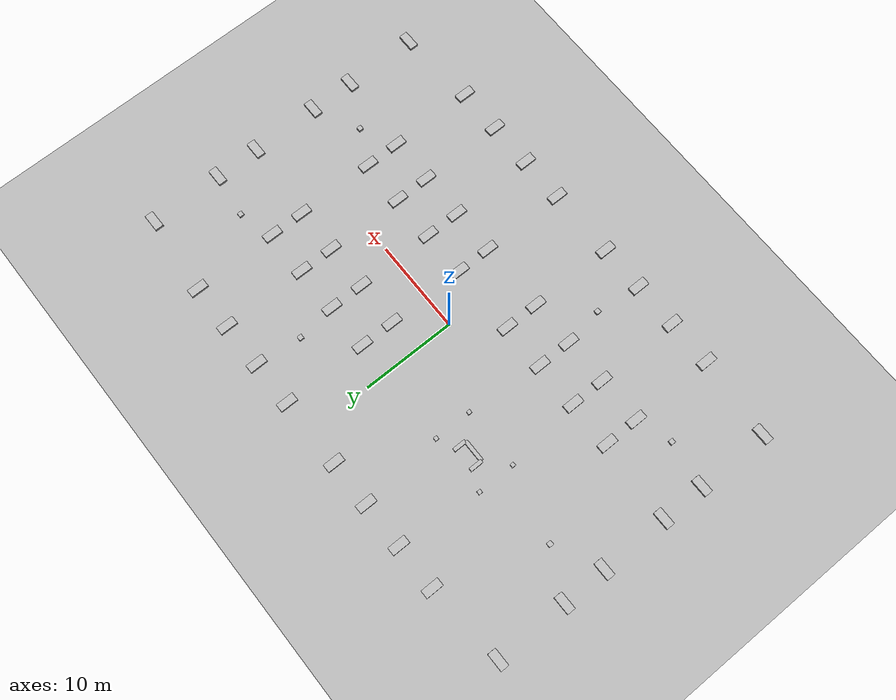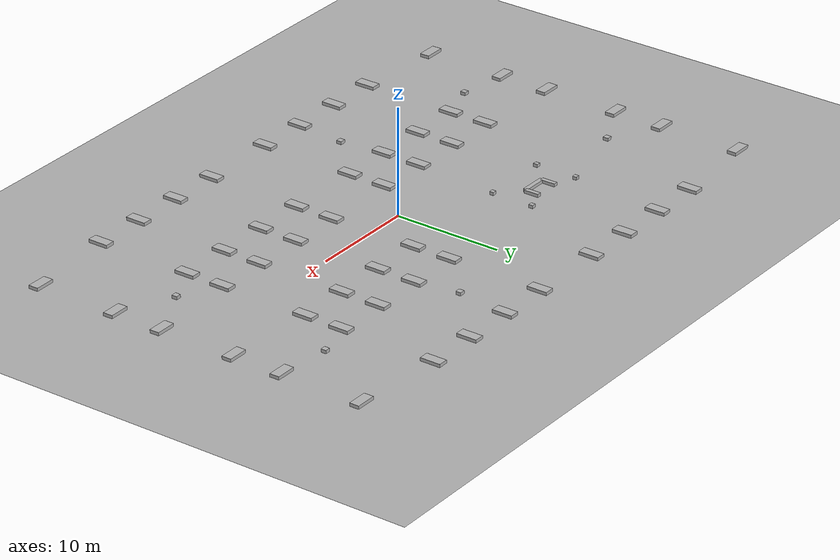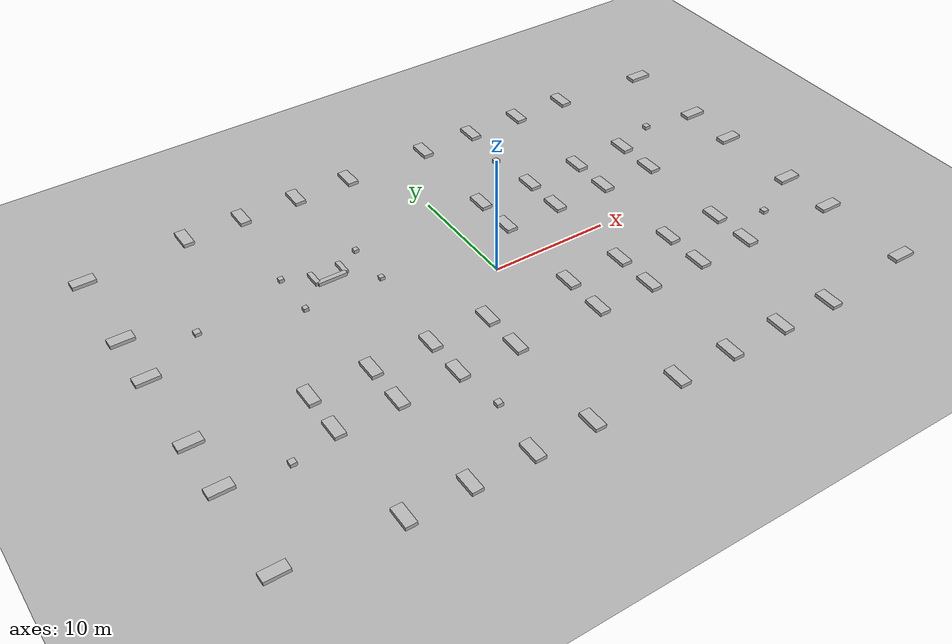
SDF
<sdf version="1.8">
 <world name="hospital_world">
  <model name="ground_plane">
   <static>true</static>
   <link name="link">
    <collision name="collision">
     <geometry><plane><normal>0 0 1</normal><size>70 50</size></plane></geometry>
    </collision>
    <visual name="visual">
     <geometry><plane><normal>0 0 1</normal><size>70 50</size></plane></geometry>
     <material><ambient>0.7 0.7 0.7 1</ambient><diffuse>0.7 0.7 0.7 1</diffuse></material>
    </visual>
   </link>
  </model>
  <model name="furniture">
   <static>true</static>
   <link name="link">
    <collision name="c0">
     <pose>-18.3125 16.815 0.15 0 0 0</pose>
     <geometry><box><size>0.9 1.9 0.3</size></box></geometry>
    </collision>
    <visual name="v0">
     <pose>-18.3125 16.815 0.15 0 0 0</pose>
     <geometry><box><size>0.9 1.9 0.3</size></box></geometry>
    </visual>
    <collision name="c1">
     <pose>-13.4375 16.815 0.15 0 0 0</pose>
     <geometry><box><size>0.9 1.9 0.3</size></box></geometry>
    </collision>
    <visual name="v1">
     <pose>-13.4375 16.815 0.15 0 0 0</pose>
     <geometry><box><size>0.9 1.9 0.3</size></box></geometry>
    </visual>
    <collision name="c2">
     <pose>-8.5625 16.815 0.15 0 0 0</pose>
     <geometry><box><size>0.9 1.9 0.3</size></box></geometry>
    </collision>
    <visual name="v2">
     <pose>-8.5625 16.815 0.15 0 0 0</pose>
     <geometry><box><size>0.9 1.9 0.3</size></box></geometry>
    </visual>
    <collision name="c3">
     <pose>-3.6875 16.815 0.15 0 0 0</pose>
     <geometry><box><size>0.9 1.9 0.3</size></box></geometry>
    </collision>
    <visual name="v3">
     <pose>-3.6875 16.815 0.15 0 0 0</pose>
     <geometry><box><size>0.9 1.9 0.3</size></box></geometry>
    </visual>
    <collision name="c4">
     <pose>3.6875 16.815 0.15 0 0 0</pose>
     <geometry><box><size>0.9 1.9 0.3</size></box></geometry>
    </collision>
    <visual name="v4">
     <pose>3.6875 16.815 0.15 0 0 0</pose>
     <geometry><box><size>0.9 1.9 0.3</size></box></geometry>
    </visual>
    <collision name="c5">
     <pose>8.5625 16.815 0.15 0 0 0</pose>
     <geometry><box><size>0.9 1.9 0.3</size></box></geometry>
    </collision>
    <visual name="v5">
     <pose>8.5625 16.815 0.15 0 0 0</pose>
     <geometry><box><size>0.9 1.9 0.3</size></box></geometry>
    </visual>
    <collision name="c6">
     <pose>13.4375 16.815 0.15 0 0 0</pose>
     <geometry><box><size>0.9 1.9 0.3</size></box></geometry>
    </collision>
    <visual name="v6">
     <pose>13.4375 16.815 0.15 0 0 0</pose>
     <geometry><box><size>0.9 1.9 0.3</size></box></geometry>
    </visual>
    <collision name="c7">
     <pose>18.3125 16.815 0.15 0 0 0</pose>
     <geometry><box><size>0.9 1.9 0.3</size></box></geometry>
    </collision>
    <visual name="v7">
     <pose>18.3125 16.815 0.15 0 0 0</pose>
     <geometry><box><size>0.9 1.9 0.3</size></box></geometry>
    </visual>
    <collision name="c8">
     <pose>-14.315 4 0.15 0 0 0</pose>
     <geometry><box><size>0.4 0.4 0.3</size></box></geometry>
    </collision>
    <visual name="v8">
     <pose>-14.315 4 0.15 0 0 0</pose>
     <geometry><box><size>0.4 0.4 0.3</size></box></geometry>
    </visual>
    <collision name="c9">
     <pose>-14.315 8 0.15 0 0 0</pose>
     <geometry><box><size>0.4 0.4 0.3</size></box></geometry>
    </collision>
    <visual name="v9">
     <pose>-14.315 8 0.15 0 0 0</pose>
     <geometry><box><size>0.4 0.4 0.3</size></box></geometry>
    </visual>
    <collision name="c10">
     <pose>-7.88 4 0.15 0 0 0</pose>
     <geometry><box><size>0.4 0.4 0.3</size></box></geometry>
    </collision>
    <visual name="v10">
     <pose>-7.88 4 0.15 0 0 0</pose>
     <geometry><box><size>0.4 0.4 0.3</size></box></geometry>
    </visual>
    <collision name="c11">
     <pose>-7.88 8 0.15 0 0 0</pose>
     <geometry><box><size>0.4 0.4 0.3</size></box></geometry>
    </collision>
    <visual name="v11">
     <pose>-7.88 8 0.15 0 0 0</pose>
     <geometry><box><size>0.4 0.4 0.3</size></box></geometry>
    </visual>
    <collision name="c12">
     <pose>-11 6 0.15 0 0 0</pose>
     <geometry><box><size>2.4 0.4 0.3</size></box></geometry>
    </collision>
    <visual name="v12">
     <pose>-11 6 0.15 0 0 0</pose>
     <geometry><box><size>2.4 0.4 0.3</size></box></geometry>
    </visual>
    <collision name="c13">
     <pose>-12.2 6.7 0.15 0 0 0</pose>
     <geometry><box><size>0.4 1.4 0.3</size></box></geometry>
    </collision>
    <visual name="v13">
     <pose>-12.2 6.7 0.15 0 0 0</pose>
     <geometry><box><size>0.4 1.4 0.3</size></box></geometry>
    </visual>
    <collision name="c14">
     <pose>-9.8 6.7 0.15 0 0 0</pose>
     <geometry><box><size>0.4 1.4 0.3</size></box></geometry>
    </collision>
    <visual name="v14">
     <pose>-9.8 6.7 0.15 0 0 0</pose>
     <geometry><box><size>0.4 1.4 0.3</size></box></geometry>
    </visual>
    <collision name="c15">
     <pose>3.6875 7.805 0.15 0 0 0</pose>
     <geometry><box><size>0.9 1.9 0.3</size></box></geometry>
    </collision>
    <visual name="v15">
     <pose>3.6875 7.805 0.15 0 0 0</pose>
     <geometry><box><size>0.9 1.9 0.3</size></box></geometry>
    </visual>
    <collision name="c16">
     <pose>8.5625 7.805 0.15 0 0 0</pose>
     <geometry><box><size>0.9 1.9 0.3</size></box></geometry>
    </collision>
    <visual name="v16">
     <pose>8.5625 7.805 0.15 0 0 0</pose>
     <geometry><box><size>0.9 1.9 0.3</size></box></geometry>
    </visual>
    <collision name="c17">
     <pose>13.4375 7.805 0.15 0 0 0</pose>
     <geometry><box><size>0.9 1.9 0.3</size></box></geometry>
    </collision>
    <visual name="v17">
     <pose>13.4375 7.805 0.15 0 0 0</pose>
     <geometry><box><size>0.9 1.9 0.3</size></box></geometry>
    </visual>
    <collision name="c18">
     <pose>18.3125 7.805 0.15 0 0 0</pose>
     <geometry><box><size>0.9 1.9 0.3</size></box></geometry>
    </collision>
    <visual name="v18">
     <pose>18.3125 7.805 0.15 0 0 0</pose>
     <geometry><box><size>0.9 1.9 0.3</size></box></geometry>
    </visual>
    <collision name="c19">
     <pose>3.6875 4.195 0.15 0 0 0</pose>
     <geometry><box><size>0.9 1.9 0.3</size></box></geometry>
    </collision>
    <visual name="v19">
     <pose>3.6875 4.195 0.15 0 0 0</pose>
     <geometry><box><size>0.9 1.9 0.3</size></box></geometry>
    </visual>
    <collision name="c20">
     <pose>8.5625 4.195 0.15 0 0 0</pose>
     <geometry><box><size>0.9 1.9 0.3</size></box></geometry>
    </collision>
    <visual name="v20">
     <pose>8.5625 4.195 0.15 0 0 0</pose>
     <geometry><box><size>0.9 1.9 0.3</size></box></geometry>
    </visual>
    <collision name="c21">
     <pose>13.4375 4.195 0.15 0 0 0</pose>
     <geometry><box><size>0.9 1.9 0.3</size></box></geometry>
    </collision>
    <visual name="v21">
     <pose>13.4375 4.195 0.15 0 0 0</pose>
     <geometry><box><size>0.9 1.9 0.3</size></box></geometry>
    </visual>
    <collision name="c22">
     <pose>18.3125 4.195 0.15 0 0 0</pose>
     <geometry><box><size>0.9 1.9 0.3</size></box></geometry>
    </collision>
    <visual name="v22">
     <pose>18.3125 4.195 0.15 0 0 0</pose>
     <geometry><box><size>0.9 1.9 0.3</size></box></geometry>
    </visual>
    <collision name="c23">
     <pose>-18.3125 -7.805 0.15 0 0 0</pose>
     <geometry><box><size>0.9 1.9 0.3</size></box></geometry>
    </collision>
    <visual name="v23">
     <pose>-18.3125 -7.805 0.15 0 0 0</pose>
     <geometry><box><size>0.9 1.9 0.3</size></box></geometry>
    </visual>
    <collision name="c24">
     <pose>-13.4375 -7.805 0.15 0 0 0</pose>
     <geometry><box><size>0.9 1.9 0.3</size></box></geometry>
    </collision>
    <visual name="v24">
     <pose>-13.4375 -7.805 0.15 0 0 0</pose>
     <geometry><box><size>0.9 1.9 0.3</size></box></geometry>
    </visual>
    <collision name="c25">
     <pose>-8.5625 -7.805 0.15 0 0 0</pose>
     <geometry><box><size>0.9 1.9 0.3</size></box></geometry>
    </collision>
    <visual name="v25">
     <pose>-8.5625 -7.805 0.15 0 0 0</pose>
     <geometry><box><size>0.9 1.9 0.3</size></box></geometry>
    </visual>
    <collision name="c26">
     <pose>-3.6875 -7.805 0.15 0 0 0</pose>
     <geometry><box><size>0.9 1.9 0.3</size></box></geometry>
    </collision>
    <visual name="v26">
     <pose>-3.6875 -7.805 0.15 0 0 0</pose>
     <geometry><box><size>0.9 1.9 0.3</size></box></geometry>
    </visual>
    <collision name="c27">
     <pose>-18.3125 -4.195 0.15 0 0 0</pose>
     <geometry><box><size>0.9 1.9 0.3</size></box></geometry>
    </collision>
    <visual name="v27">
     <pose>-18.3125 -4.195 0.15 0 0 0</pose>
     <geometry><box><size>0.9 1.9 0.3</size></box></geometry>
    </visual>
    <collision name="c28">
     <pose>-13.4375 -4.195 0.15 0 0 0</pose>
     <geometry><box><size>0.9 1.9 0.3</size></box></geometry>
    </collision>
    <visual name="v28">
     <pose>-13.4375 -4.195 0.15 0 0 0</pose>
     <geometry><box><size>0.9 1.9 0.3</size></box></geometry>
    </visual>
    <collision name="c29">
     <pose>-8.5625 -4.195 0.15 0 0 0</pose>
     <geometry><box><size>0.9 1.9 0.3</size></box></geometry>
    </collision>
    <visual name="v29">
     <pose>-8.5625 -4.195 0.15 0 0 0</pose>
     <geometry><box><size>0.9 1.9 0.3</size></box></geometry>
    </visual>
    <collision name="c30">
     <pose>-3.6875 -4.195 0.15 0 0 0</pose>
     <geometry><box><size>0.9 1.9 0.3</size></box></geometry>
    </collision>
    <visual name="v30">
     <pose>-3.6875 -4.195 0.15 0 0 0</pose>
     <geometry><box><size>0.9 1.9 0.3</size></box></geometry>
    </visual>
    <collision name="c31">
     <pose>3.6875 -7.805 0.15 0 0 0</pose>
     <geometry><box><size>0.9 1.9 0.3</size></box></geometry>
    </collision>
    <visual name="v31">
     <pose>3.6875 -7.805 0.15 0 0 0</pose>
     <geometry><box><size>0.9 1.9 0.3</size></box></geometry>
    </visual>
    <collision name="c32">
     <pose>8.5625 -7.805 0.15 0 0 0</pose>
     <geometry><box><size>0.9 1.9 0.3</size></box></geometry>
    </collision>
    <visual name="v32">
     <pose>8.5625 -7.805 0.15 0 0 0</pose>
     <geometry><box><size>0.9 1.9 0.3</size></box></geometry>
    </visual>
    <collision name="c33">
     <pose>13.4375 -7.805 0.15 0 0 0</pose>
     <geometry><box><size>0.9 1.9 0.3</size></box></geometry>
    </collision>
    <visual name="v33">
     <pose>13.4375 -7.805 0.15 0 0 0</pose>
     <geometry><box><size>0.9 1.9 0.3</size></box></geometry>
    </visual>
    <collision name="c34">
     <pose>18.3125 -7.805 0.15 0 0 0</pose>
     <geometry><box><size>0.9 1.9 0.3</size></box></geometry>
    </collision>
    <visual name="v34">
     <pose>18.3125 -7.805 0.15 0 0 0</pose>
     <geometry><box><size>0.9 1.9 0.3</size></box></geometry>
    </visual>
    <collision name="c35">
     <pose>3.6875 -4.195 0.15 0 0 0</pose>
     <geometry><box><size>0.9 1.9 0.3</size></box></geometry>
    </collision>
    <visual name="v35">
     <pose>3.6875 -4.195 0.15 0 0 0</pose>
     <geometry><box><size>0.9 1.9 0.3</size></box></geometry>
    </visual>
    <collision name="c36">
     <pose>8.5625 -4.195 0.15 0 0 0</pose>
     <geometry><box><size>0.9 1.9 0.3</size></box></geometry>
    </collision>
    <visual name="v36">
     <pose>8.5625 -4.195 0.15 0 0 0</pose>
     <geometry><box><size>0.9 1.9 0.3</size></box></geometry>
    </visual>
    <collision name="c37">
     <pose>13.4375 -4.195 0.15 0 0 0</pose>
     <geometry><box><size>0.9 1.9 0.3</size></box></geometry>
    </collision>
    <visual name="v37">
     <pose>13.4375 -4.195 0.15 0 0 0</pose>
     <geometry><box><size>0.9 1.9 0.3</size></box></geometry>
    </visual>
    <collision name="c38">
     <pose>18.3125 -4.195 0.15 0 0 0</pose>
     <geometry><box><size>0.9 1.9 0.3</size></box></geometry>
    </collision>
    <visual name="v38">
     <pose>18.3125 -4.195 0.15 0 0 0</pose>
     <geometry><box><size>0.9 1.9 0.3</size></box></geometry>
    </visual>
    <collision name="c39">
     <pose>-18.3125 -16.815 0.15 0 0 0</pose>
     <geometry><box><size>0.9 1.9 0.3</size></box></geometry>
    </collision>
    <visual name="v39">
     <pose>-18.3125 -16.815 0.15 0 0 0</pose>
     <geometry><box><size>0.9 1.9 0.3</size></box></geometry>
    </visual>
    <collision name="c40">
     <pose>-13.4375 -16.815 0.15 0 0 0</pose>
     <geometry><box><size>0.9 1.9 0.3</size></box></geometry>
    </collision>
    <visual name="v40">
     <pose>-13.4375 -16.815 0.15 0 0 0</pose>
     <geometry><box><size>0.9 1.9 0.3</size></box></geometry>
    </visual>
    <collision name="c41">
     <pose>-8.5625 -16.815 0.15 0 0 0</pose>
     <geometry><box><size>0.9 1.9 0.3</size></box></geometry>
    </collision>
    <visual name="v41">
     <pose>-8.5625 -16.815 0.15 0 0 0</pose>
     <geometry><box><size>0.9 1.9 0.3</size></box></geometry>
    </visual>
    <collision name="c42">
     <pose>-3.6875 -16.815 0.15 0 0 0</pose>
     <geometry><box><size>0.9 1.9 0.3</size></box></geometry>
    </collision>
    <visual name="v42">
     <pose>-3.6875 -16.815 0.15 0 0 0</pose>
     <geometry><box><size>0.9 1.9 0.3</size></box></geometry>
    </visual>
    <collision name="c43">
     <pose>3.6875 -16.815 0.15 0 0 0</pose>
     <geometry><box><size>0.9 1.9 0.3</size></box></geometry>
    </collision>
    <visual name="v43">
     <pose>3.6875 -16.815 0.15 0 0 0</pose>
     <geometry><box><size>0.9 1.9 0.3</size></box></geometry>
    </visual>
    <collision name="c44">
     <pose>8.5625 -16.815 0.15 0 0 0</pose>
     <geometry><box><size>0.9 1.9 0.3</size></box></geometry>
    </collision>
    <visual name="v44">
     <pose>8.5625 -16.815 0.15 0 0 0</pose>
     <geometry><box><size>0.9 1.9 0.3</size></box></geometry>
    </visual>
    <collision name="c45">
     <pose>13.4375 -16.815 0.15 0 0 0</pose>
     <geometry><box><size>0.9 1.9 0.3</size></box></geometry>
    </collision>
    <visual name="v45">
     <pose>13.4375 -16.815 0.15 0 0 0</pose>
     <geometry><box><size>0.9 1.9 0.3</size></box></geometry>
    </visual>
    <collision name="c46">
     <pose>18.3125 -16.815 0.15 0 0 0</pose>
     <geometry><box><size>0.9 1.9 0.3</size></box></geometry>
    </collision>
    <visual name="v46">
     <pose>18.3125 -16.815 0.15 0 0 0</pose>
     <geometry><box><size>0.9 1.9 0.3</size></box></geometry>
    </visual>
    <collision name="c47">
     <pose>-26.815 16.125 0.15 0 0 0</pose>
     <geometry><box><size>1.9 0.9 0.3</size></box></geometry>
    </collision>
    <visual name="v47">
     <pose>-26.815 16.125 0.15 0 0 0</pose>
     <geometry><box><size>1.9 0.9 0.3</size></box></geometry>
    </visual>
    <collision name="c48">
     <pose>26.815 16.125 0.15 0 0 0</pose>
     <geometry><box><size>1.9 0.9 0.3</size></box></geometry>
    </collision>
    <visual name="v48">
     <pose>26.815 16.125 0.15 0 0 0</pose>
     <geometry><box><size>1.9 0.9 0.3</size></box></geometry>
    </visual>
    <collision name="c49">
     <pose>-26.815 3.625 0.15 0 0 0</pose>
     <geometry><box><size>1.9 0.9 0.3</size></box></geometry>
    </collision>
    <visual name="v49">
     <pose>-26.815 3.625 0.15 0 0 0</pose>
     <geometry><box><size>1.9 0.9 0.3</size></box></geometry>
    </visual>
    <collision name="c50">
     <pose>-26.815 8.375 0.15 0 0 0</pose>
     <geometry><box><size>1.9 0.9 0.3</size></box></geometry>
    </collision>
    <visual name="v50">
     <pose>-26.815 8.375 0.15 0 0 0</pose>
     <geometry><box><size>1.9 0.9 0.3</size></box></geometry>
    </visual>
    <collision name="c51">
     <pose>26.815 3.625 0.15 0 0 0</pose>
     <geometry><box><size>1.9 0.9 0.3</size></box></geometry>
    </collision>
    <visual name="v51">
     <pose>26.815 3.625 0.15 0 0 0</pose>
     <geometry><box><size>1.9 0.9 0.3</size></box></geometry>
    </visual>
    <collision name="c52">
     <pose>26.815 8.375 0.15 0 0 0</pose>
     <geometry><box><size>1.9 0.9 0.3</size></box></geometry>
    </collision>
    <visual name="v52">
     <pose>26.815 8.375 0.15 0 0 0</pose>
     <geometry><box><size>1.9 0.9 0.3</size></box></geometry>
    </visual>
    <collision name="c53">
     <pose>-26.815 -8.375 0.15 0 0 0</pose>
     <geometry><box><size>1.9 0.9 0.3</size></box></geometry>
    </collision>
    <visual name="v53">
     <pose>-26.815 -8.375 0.15 0 0 0</pose>
     <geometry><box><size>1.9 0.9 0.3</size></box></geometry>
    </visual>
    <collision name="c54">
     <pose>-26.815 -3.625 0.15 0 0 0</pose>
     <geometry><box><size>1.9 0.9 0.3</size></box></geometry>
    </collision>
    <visual name="v54">
     <pose>-26.815 -3.625 0.15 0 0 0</pose>
     <geometry><box><size>1.9 0.9 0.3</size></box></geometry>
    </visual>
    <collision name="c55">
     <pose>26.815 -8.375 0.15 0 0 0</pose>
     <geometry><box><size>1.9 0.9 0.3</size></box></geometry>
    </collision>
    <visual name="v55">
     <pose>26.815 -8.375 0.15 0 0 0</pose>
     <geometry><box><size>1.9 0.9 0.3</size></box></geometry>
    </visual>
    <collision name="c56">
     <pose>26.815 -3.625 0.15 0 0 0</pose>
     <geometry><box><size>1.9 0.9 0.3</size></box></geometry>
    </collision>
    <visual name="v56">
     <pose>26.815 -3.625 0.15 0 0 0</pose>
     <geometry><box><size>1.9 0.9 0.3</size></box></geometry>
    </visual>
    <collision name="c57">
     <pose>-26.815 -16.125 0.15 0 0 0</pose>
     <geometry><box><size>1.9 0.9 0.3</size></box></geometry>
    </collision>
    <visual name="v57">
     <pose>-26.815 -16.125 0.15 0 0 0</pose>
     <geometry><box><size>1.9 0.9 0.3</size></box></geometry>
    </visual>
    <collision name="c58">
     <pose>26.815 -16.125 0.15 0 0 0</pose>
     <geometry><box><size>1.9 0.9 0.3</size></box></geometry>
    </collision>
    <visual name="v58">
     <pose>26.815 -16.125 0.15 0 0 0</pose>
     <geometry><box><size>1.9 0.9 0.3</size></box></geometry>
    </visual>
    <collision name="c59">
     <pose>-22 6 0.15 0 0 0</pose>
     <geometry><box><size>0.5 0.5 0.3</size></box></geometry>
    </collision>
    <visual name="v59">
     <pose>-22 6 0.15 0 0 0</pose>
     <geometry><box><size>0.5 0.5 0.3</size></box></geometry>
    </visual>
    <collision name="c60">
     <pose>22 -6 0.15 0 0 0</pose>
     <geometry><box><size>0.5 0.5 0.3</size></box></geometry>
    </collision>
    <visual name="v60">
     <pose>22 -6 0.15 0 0 0</pose>
     <geometry><box><size>0.5 0.5 0.3</size></box></geometry>
    </visual>
    <collision name="c61">
     <pose>-8 -12 0.15 0 0 0</pose>
     <geometry><box><size>0.5 0.5 0.3</size></box></geometry>
    </collision>
    <visual name="v61">
     <pose>-8 -12 0.15 0 0 0</pose>
     <geometry><box><size>0.5 0.5 0.3</size></box></geometry>
    </visual>
    <collision name="c62">
     <pose>8 12 0.15 0 0 0</pose>
     <geometry><box><size>0.5 0.5 0.3</size></box></geometry>
    </collision>
    <visual name="v62">
     <pose>8 12 0.15 0 0 0</pose>
     <geometry><box><size>0.5 0.5 0.3</size></box></geometry>
    </visual>
    <collision name="c63">
     <pose>22 9 0.15 0 0 0</pose>
     <geometry><box><size>0.5 0.5 0.3</size></box></geometry>
    </collision>
    <visual name="v63">
     <pose>22 9 0.15 0 0 0</pose>
     <geometry><box><size>0.5 0.5 0.3</size></box></geometry>
    </visual>
    <collision name="c64">
     <pose>-22 -9 0.15 0 0 0</pose>
     <geometry><box><size>0.5 0.5 0.3</size></box></geometry>
    </collision>
    <visual name="v64">
     <pose>-22 -9 0.15 0 0 0</pose>
     <geometry><box><size>0.5 0.5 0.3</size></box></geometry>
    </visual>
   </link>
  </model>
 </world>
</sdf>
